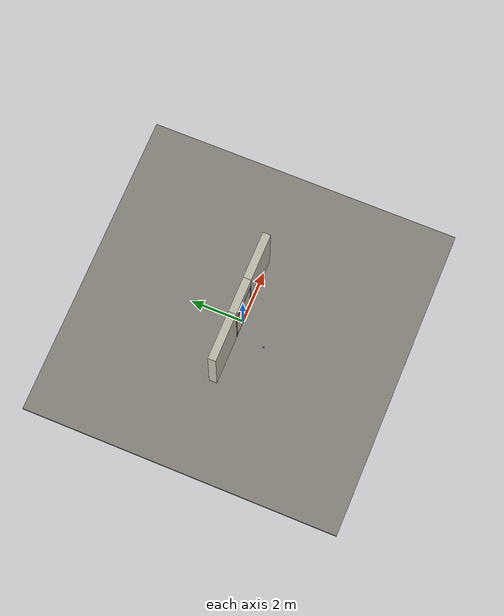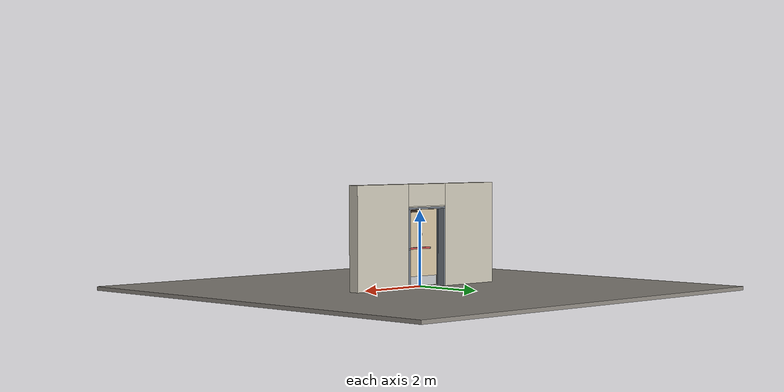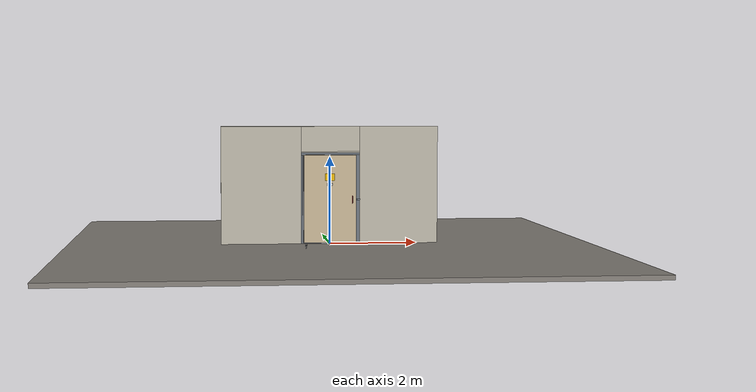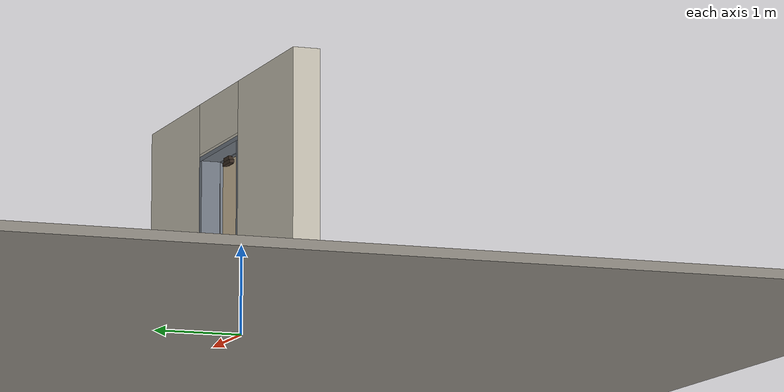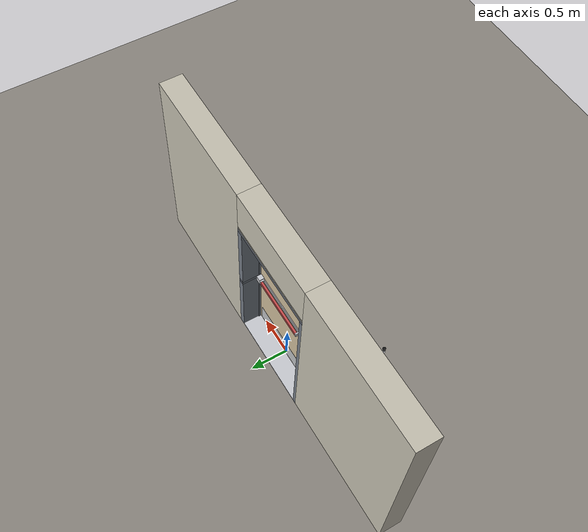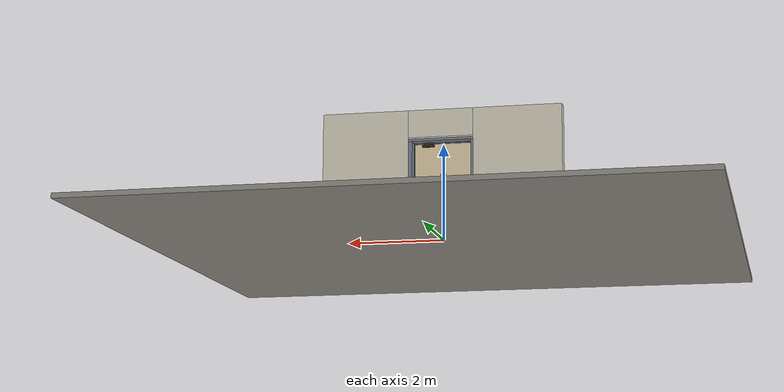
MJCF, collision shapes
<?xml version="1.0" ?>
<mujoco model="db0293_swing_single_full">
  <compiler angle="radian" meshdir="../../hardware" texturedir="../../textures" autolimits="true" inertiafromgeom="false"/>
  <option timestep="0.002" integrator="implicitfast" cone="elliptic" impratio="10" noslip_iterations="3">
    <flag multiccd="enable"/>
  </option>
  <size memory="16M"/>
  <default>
    <geom condim="4" solref="0.005 1" solimp="0.95 0.99 0.001"/>
    <joint solreflimit="0.005 1" solimplimit="0.95 0.99 0.001"/>
    <tendon solreflimit="0.005 1"/>
    <equality solref="0.002 1"/>
  </default>
  <visual>
    <headlight ambient="0.4 0.4 0.4" diffuse="0.7 0.7 0.7" specular="0.2 0.2 0.2"/>
    <quality shadowsize="4096"/>
    <map znear="0.01" zfar="60"/>
  </visual>
  <asset>
    <mesh name="exit_sign_a6449bfa2c" file="exit_sign_a6449bfa2c.obj"/>
    <mesh name="pull_1e5d69a91a" file="pull_1e5d69a91a.obj"/>
    <mesh name="touchbar_pad_53c3d671cc" file="touchbar_pad_53c3d671cc.obj"/>
    <material name="mat_floor" rgba="0.55 0.53 0.5 1" specular="0.2" shininess="0.15" reflectance="0"/>
    <material name="mat_wall" rgba="0.78 0.76 0.7 1" specular="0.2" shininess="0.1" reflectance="0"/>
    <material name="mat_leaf" rgba="0.82 0.75 0.62 1" specular="0.23" shininess="0.46" reflectance="0.02"/>
    <material name="mat_hinge" rgba="0.65 0.66 0.68 1" specular="0.74" shininess="0.5" reflectance="0.36"/>
    <material name="mat_op_aluminum" rgba="0.8 0.81 0.83 1" specular="0.8" shininess="0.6" reflectance="0.4"/>
    <material name="mat_op_stainless" rgba="0.75 0.76 0.77 1" specular="0.8" shininess="0.65" reflectance="0.4"/>
    <material name="mat_bolt" rgba="0.75 0.76 0.77 1" specular="0.8" shininess="0.65" reflectance="0.4"/>
    <material name="mat_maglock" rgba="0.22 0.17 0.13 1" specular="0.8" shininess="0.6" reflectance="0.4"/>
    <material name="mat_frame" rgba="0.45 0.48 0.52 1" specular="0.32" shininess="0.6" reflectance="0.08"/>
    <material name="mat_seal" rgba="0.1 0.1 0.1 1" specular="0.2" shininess="0.1" reflectance="0"/>
    <material name="mat_threshold" rgba="0.8 0.81 0.83 1" specular="0.8" shininess="0.6" reflectance="0.4"/>
    <material name="mat_closer" rgba="0.22 0.17 0.13 1" specular="0.8" shininess="0.6" reflectance="0.4"/>
    <material name="mat_kick" rgba="0.75 0.76 0.77 1" specular="0.8" shininess="0.65" reflectance="0.4"/>
    <material name="mat_exit_sign" rgba="0.85 0.1 0.1 1" specular="0.2" shininess="0.6" reflectance="0"/>
    <material name="mat_sign_bracket" rgba="0.8 0.81 0.83 1" specular="0.8" shininess="0.6" reflectance="0.4"/>
    <material name="mat_sign" rgba="0.75 0.76 0.77 1" specular="0.8" shininess="0.65" reflectance="0.4"/>
    <material name="mat_placard" rgba="0.95 0.75 0.05 1" specular="0.2" shininess="0.5" reflectance="0"/>
    <material name="mat_bumper_stop" rgba="0.08 0.08 0.08 1" specular="0.2" shininess="0.1" reflectance="0"/>
    <material name="mat_stop_base" rgba="0.9 0.9 0.92 1" specular="0.8" shininess="0.9" reflectance="0.4"/>
    <texture name="skybox" type="skybox" builtin="gradient" rgb1="0.6 0.7 0.85" rgb2="0.9 0.92 0.95" width="256" height="256"/>
  </asset>
  <worldbody>
    <light name="sun" pos="1.5 -2.5 4" dir="-0.3 0.5 -0.8" directional="true" diffuse="0.8 0.8 0.8" specular="0.3 0.3 0.3" castshadow="true"/>
    <light name="fill" pos="-1.5 2.5 3" dir="0.3 -0.5 -0.7" directional="true" diffuse="0.35 0.35 0.4" castshadow="false"/>
    <camera name="robot_view" pos="0 -2.421187 1.734312" xyaxes="1 0 0 0 0.26963 0.962964" fovy="52"/>
    <camera name="far_view" pos="0 2.663187 1.734312" xyaxes="-1 0 0 0 -0.26963 0.962964" fovy="52"/>
    <camera name="iso" pos="1.932062 -2.014438 2.141063" xyaxes="0.741536 0.670913 0 -0.242917 0.268487 0.932151" fovy="46"/>
    <camera name="detail_handle" pos="0.699 -0.882 1.296" xyaxes="0.97561 0.219512 0 -0.070934 0.315262 0.94635" fovy="38"/>
    <geom name="floor" type="box" size="6 6 0.05" pos="0 0 -0.05" material="mat_floor" group="0" contype="1" conaffinity="1" friction="0.8 0.005 0.0001" density="2400"/>
    <geom name="wall_left" type="box" size="0.9185 0.15 1.35" pos="-1.5815 0.121 1.35" material="mat_wall" group="0" contype="1" conaffinity="1" friction="0.6 0.005 0.0001" density="800"/>
    <geom name="wall_right" type="box" size="0.9035 0.15 1.35" pos="1.5965 0.121 1.35" material="mat_wall" group="0" contype="1" conaffinity="1" friction="0.6 0.005 0.0001" density="800"/>
    <geom name="wall_header" type="box" size="0.678 0.15 0.2875" pos="0.015 0.121 2.4125" material="mat_wall" group="0" contype="1" conaffinity="1" friction="0.6 0.005 0.0001" density="800"/>
    <geom name="leaf_maglock_body" type="box" size="0.125 0.025 0.02" pos="0.309 0.057 1.98" material="mat_maglock" group="0" contype="1" conaffinity="1" friction="0.6 0.005 0.0001" density="2000"/>
    <geom name="leaf_maglock_bracket" type="box" size="0.09 0.025 0.0225" pos="0.309 0.057 2.0225" material="mat_maglock" group="1" contype="0" conaffinity="0" density="7850"/>
    <geom name="jamb_hinge" type="box" size="0.025 0.15 1.0225" pos="-0.638 0.121 1.0225" material="mat_frame" group="0" contype="1" conaffinity="1" friction="0.6 0.005 0.0001" density="300"/>
    <geom name="strike_1016_wall_n" type="box" size="0.04 0.108 0.02" pos="0.653 0.163 1.016" material="mat_frame" group="0" contype="1" conaffinity="1" friction="0.6 0.005 0.0001" density="300"/>
    <geom name="strike_1016_wall_p" type="box" size="0.04 0.008 0.02" pos="0.653 0.025 1.016" material="mat_frame" group="0" contype="1" conaffinity="1" friction="0.6 0.005 0.0001" density="300"/>
    <geom name="strike_1016_ramp" type="box" size="0.04 0.034482 0.02" pos="0.661281 -0.0044 1.016" quat="0.989198 0 0 0.146587" material="mat_frame" group="0" contype="1" conaffinity="1" friction="0.12 0.005 0.0001" density="300"/>
    <geom name="strike_1016_back" type="box" size="0.0285 0.011 0.02" pos="0.6645 0.044 1.016" material="mat_frame" group="0" contype="1" conaffinity="1" friction="0.6 0.005 0.0001" density="300"/>
    <geom name="jamb_strike_0" type="box" size="0.04 0.15 0.498" pos="0.653 0.121 0.498" material="mat_frame" group="0" contype="1" conaffinity="1" friction="0.6 0.005 0.0001" density="300"/>
    <geom name="jamb_strike_1" type="box" size="0.04 0.15 0.5045" pos="0.653 0.121 1.5405" material="mat_frame" group="0" contype="1" conaffinity="1" friction="0.6 0.005 0.0001" density="300"/>
    <geom name="jamb_head" type="box" size="0.678 0.15 0.025" pos="0.015 0.121 2.07" material="mat_frame" group="0" contype="1" conaffinity="1" friction="0.6 0.005 0.0001" density="300"/>
    <geom name="head_stud" type="box" size="0.678 0.15 0.015" pos="0.015 0.121 2.11" material="mat_wall" group="0" contype="1" conaffinity="1" friction="0.6 0.005 0.0001" density="500"/>
    <geom name="stop_hinge" type="box" size="0.0055 0.016 1.0225" pos="-0.6075 0.0385 1.0225" material="mat_frame" group="0" contype="1" conaffinity="1" friction="0.6 0.005 0.0001" density="300"/>
    <geom name="stop_strike" type="box" size="0.0055 0.016 0.48425" pos="0.6075 0.0385 0.48425" material="mat_frame" group="0" contype="1" conaffinity="1" friction="0.6 0.005 0.0001" density="300"/>
    <geom name="stop_strike_1" type="box" size="0.0055 0.016 0.49075" pos="0.6075 0.0385 1.55425" material="mat_frame" group="0" contype="1" conaffinity="1" friction="0.6 0.005 0.0001" density="300"/>
    <geom name="stop_head" type="box" size="0.613 0.016 0.0055" pos="0 0.0385 2.0395" material="mat_frame" group="0" contype="1" conaffinity="1" friction="0.6 0.005 0.0001" density="300"/>
    <geom name="seal_hinge" type="box" size="0.004 0.0025 1.0225" pos="-0.61 0.0245 1.0225" material="mat_seal" group="1" contype="0" conaffinity="0" density="1100"/>
    <geom name="seal_strike" type="box" size="0.004 0.0025 0.48425" pos="0.61 0.0245 0.48425" material="mat_seal" group="1" contype="0" conaffinity="0" density="1100"/>
    <geom name="seal_strike_1" type="box" size="0.004 0.0025 0.49075" pos="0.61 0.0245 1.55425" material="mat_seal" group="1" contype="0" conaffinity="0" density="1100"/>
    <geom name="seal_head" type="box" size="0.593 0.0025 0.008" pos="0 0.0245 2.033" material="mat_seal" group="1" contype="0" conaffinity="0" density="1100"/>
    <geom name="threshold" type="box" size="0.663 0.15 0.0065" pos="0 0.121 0.0065" material="mat_threshold" group="0" contype="1" conaffinity="1" friction="0.5 0.005 0.0001" density="2700"/>
    <geom name="closer_concealed_slot" type="box" size="0.25 0.008 0.004" pos="-0.313 -0.032 2.05" material="mat_closer" group="1" contype="0" conaffinity="0" density="2700"/>
    <geom name="exit_sign" type="mesh" mesh="exit_sign_a6449bfa2c" pos="0 0.15 2.345" material="mat_exit_sign" group="2" contype="0" conaffinity="0" density="500"/>
    <geom name="exit_sign_bracket" type="box" size="0.05775 0.00875 0.0605" pos="0 0.15 2.185" material="mat_sign_bracket" group="2" contype="0" conaffinity="0" density="7850"/>
    <geom name="door_stop_base" type="cylinder" size="0.022 0.003" pos="-0.626 -1.06515 0.003" material="mat_stop_base" group="0" contype="1" conaffinity="1" friction="0.6 0.005 0.0001" density="7850"/>
    <geom name="door_stop_post" type="cylinder" size="0.012 0.0255" pos="-0.626 -1.06515 0.0315" material="mat_stop_base" group="0" contype="1" conaffinity="1" friction="0.6 0.005 0.0001" density="7850"/>
    <geom name="door_stop_bumper" type="cylinder" size="0.022 0.02" pos="-0.626 -1.06515 0.077" material="mat_bumper_stop" group="0" contype="1" conaffinity="1" friction="0.6 0.005 0.0001" density="1100"/>
    <site name="approach_point" pos="0 -1.5 0" quat="1 0 0 0" size="0.05" rgba="0.2 0.9 0.2 0.5" group="4"/>
    <site name="goal_point" pos="0 1.5 0" quat="1 0 0 0" size="0.05" rgba="0.2 0.9 0.2 0.5" group="4"/>
    <site name="door_plane_center" pos="0 0 1.0225" quat="1 0 0 0" size="0.02" rgba="0.2 0.9 0.2 0.5" group="4"/>
    <body name="leaf" pos="-0.613 0 0">
      <inertial pos="0.604535 0.001073 0.999581" mass="80.324607" quat="0.503972 -0.499456 -0.499588 -0.496958" diaginertia="10.774430234 27.984214713 38.712110243"/>
      <joint name="leaf_hinge" type="hinge" axis="0 0 -1" pos="0.003 -0.029 0" limited="true" range="0 1.570796" solreflimit="0.02 1" damping="10.810319" frictionloss="5.077996" stiffness="17.118706" springref="-2.550426" armature="0.02"/>
      <geom name="leaf_slab" type="box" size="0.6095 0.022 1.012" pos="0.6125 0 1.029" material="mat_leaf" group="0" contype="1" conaffinity="1" friction="0.4 0.005 0.0001" density="1"/>
      <geom name="hinge_continuous" type="cylinder" size="0.0136 1.002" pos="0.003 -0.029 1.029" material="mat_hinge" group="1" contype="0" conaffinity="0" density="2700"/>
      <geom name="leaf_exit_device_rail" type="box" size="0.416175 0.006 0.025" pos="0.725825 0.028 1.016" material="mat_op_aluminum" group="0" contype="1" conaffinity="1" friction="0.6 0.005 0.0001" density="3000"/>
      <geom name="leaf_exit_device_rail_end_n" type="box" size="0.01 0.0325 0.025" pos="0.31965 0.0545 1.016" material="mat_op_aluminum" group="0" contype="1" conaffinity="1" friction="0.6 0.005 0.0001" density="3000"/>
      <geom name="leaf_exit_device_rail_end_p" type="box" size="0.01 0.0325 0.025" pos="1.132 0.0545 1.016" material="mat_op_aluminum" group="0" contype="1" conaffinity="1" friction="0.6 0.005 0.0001" density="3000"/>
      <geom name="leaf_exit_device_case" type="box" size="0.034 0.034125 0.0375" pos="1.176 0.056125 1.016" material="mat_op_aluminum" group="0" contype="1" conaffinity="1" friction="0.6 0.005 0.0001" density="3000"/>
      <geom name="leaf_far_pull_n" type="mesh" mesh="pull_1e5d69a91a" pos="1.132 -0.022 1.016" quat="0.707107 0.707107 0 0" material="mat_op_stainless" group="1" contype="0" conaffinity="0" density="3000"/>
      <geom name="leaf_far_pull_col_n" type="capsule" size="0.0095 0.08" pos="1.132 -0.082 1.016" material="mat_op_stainless" group="3" contype="1" conaffinity="1" rgba="0.8 0.3 0.3 0.25" friction="0.7 0.01 0.0001" density="3000"/>
      <geom name="leaf_maglock_armature" type="box" size="0.09 0.005 0.02" pos="0.922 0.027 1.98" material="mat_maglock" group="1" contype="0" conaffinity="0" density="7800"/>
      <geom name="kick_plate_p" type="box" size="0.5795 0.0008 0.125" pos="0.6125 0.0228 0.152" material="mat_kick" group="2" contype="0" conaffinity="0" density="7900"/>
      <geom name="sign_push" type="box" size="0.06 0.001 0.03" pos="0.6125 0.023 1.367" material="mat_sign" group="2" contype="0" conaffinity="0" density="7900"/>
      <geom name="sign_pull" type="box" size="0.06 0.001 0.03" pos="0.6125 -0.023 1.367" material="mat_sign" group="2" contype="0" conaffinity="0" density="7900"/>
      <geom name="warning_placard" type="box" size="0.11 0.001 0.08" pos="0.6125 -0.023 1.535" material="mat_placard" group="2" contype="0" conaffinity="0" density="1000"/>
      <site name="leaf_far_pull_grip_n" pos="1.132 -0.082 1.016" quat="1 0 0 0" size="0.012" rgba="0.2 0.9 0.2 0.5" group="4"/>
      <site name="leaf_edge_mid" pos="1.222 0 1.012" quat="1 0 0 0" size="0.02" rgba="0.2 0.9 0.2 0.5" group="4"/>
      <body name="leaf_exit_device" pos="0.725825 0.022 1.016">
        <inertial pos="0 0.05 0" mass="6.369435" quat="0.707107 -0.707107 0 0" diaginertia="0.00155255 0.328687433 0.329284568"/>
        <joint name="leaf_exit_device_slide" type="slide" axis="0 -1 0" limited="true" range="0 0.016" damping="135.108912" frictionloss="0.5" stiffness="700" springref="-0.011429" armature="0.15"/>
        <geom name="leaf_exit_device_pad" type="mesh" mesh="touchbar_pad_53c3d671cc" pos="0 0 0" quat="-0.707107 0.707107 0 0" material="mat_op_aluminum" group="1" contype="0" conaffinity="0" density="3000"/>
        <geom name="leaf_exit_device_pad_col" type="box" size="0.393175 0.015 0.0225" pos="0 0.05 0" material="mat_op_aluminum" group="3" contype="1" conaffinity="1" rgba="0.8 0.3 0.3 0.25" friction="0.8 0.01 0.0001" density="3000"/>
        <site name="leaf_exit_device_push" pos="0 0.065 0" quat="1 0 0 0" size="0.015" rgba="0.2 0.9 0.2 0.5" group="4"/>
      </body>
      <body name="leaf_latch_bolt" pos="1.222 0.044 1.016">
        <inertial pos="-0.0055 0 0" mass="0.102826" quat="0.92388 -0.382683 0 0" diaginertia="0.000004365 0.000018287 0.000018287"/>
        <joint name="leaf_latch_bolt_slide" type="slide" axis="-1 0 0" limited="true" range="0 0.019" damping="2" frictionloss="0.3" stiffness="800" springref="-0.01" armature="0.1"/>
        <geom name="leaf_latch_bolt_capsule" type="capsule" size="0.0095 0.015" pos="-0.0055 0 0" quat="0.707107 0 0.707107 0" material="mat_bolt" group="0" contype="1" conaffinity="1" friction="0.2 0.005 0.0001" density="8500"/>
      </body>
    </body>
  </worldbody>
  <tendon>
    <fixed name="leaf_latch_bolt_coupling" limited="true" range="0 10">
      <joint joint="leaf_latch_bolt_slide" coef="1"/>
      <joint joint="leaf_exit_device_slide" coef="-1.357143"/>
    </fixed>
  </tendon>
  <equality>
    <weld name="leaf_maglock" body1="leaf" body2="world" active="true"/>
  </equality>
  <sensor>
    <jointpos name="leaf_hinge_pos" joint="leaf_hinge"/>
    <jointvel name="leaf_hinge_vel" joint="leaf_hinge"/>
    <jointpos name="leaf_exit_device_slide_pos" joint="leaf_exit_device_slide"/>
    <jointvel name="leaf_exit_device_slide_vel" joint="leaf_exit_device_slide"/>
    <jointpos name="leaf_latch_bolt_slide_pos" joint="leaf_latch_bolt_slide"/>
    <jointvel name="leaf_latch_bolt_slide_vel" joint="leaf_latch_bolt_slide"/>
  </sensor>
</mujoco>
